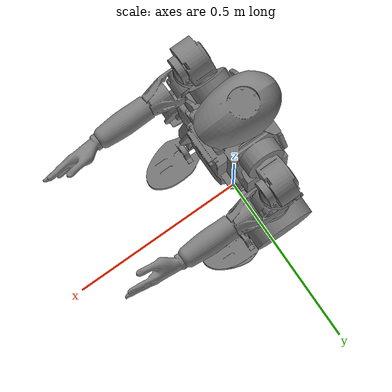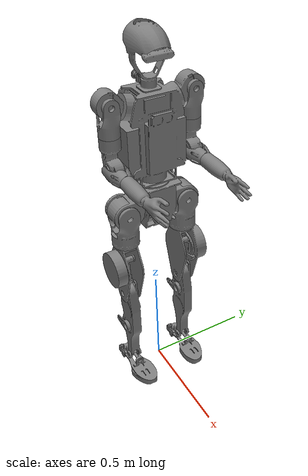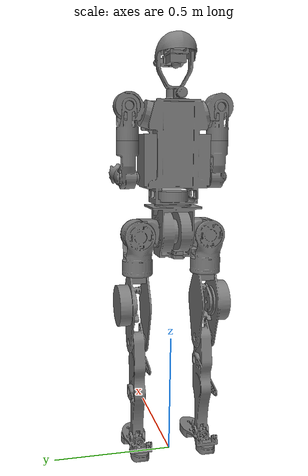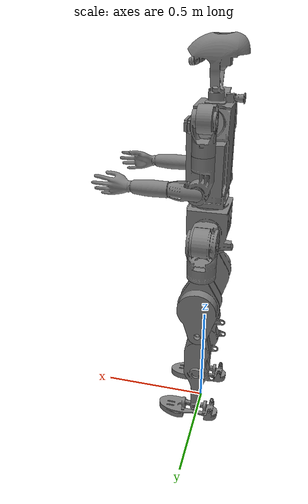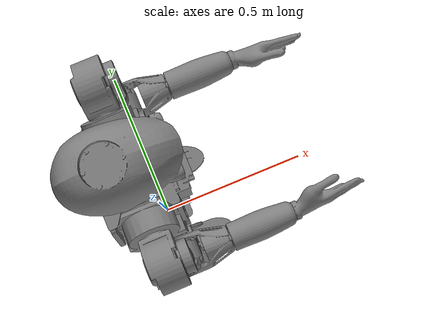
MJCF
<!--
Modified by Kaihong 2025
-->

<mujoco model="z1">
  <compiler angle="radian" meshdir="meshes/" autolimits="true"/>

  <default>
    <default class="z1">
      <default class="visual">
        <geom group="2" type="mesh" density="0" contype="0" conaffinity="0"/>
      </default>
      <default class="collision">
        <geom group="3" rgba=".2 .6 .2 .3" type="capsule" contype="1" conaffinity="1"/>
        <default class="foot_capsule">
          <geom type="capsule" size="0.01"/>
        </default>
      </default>
      <site group="5" rgba="1 0 0 1"/>
    </default>
  </default>

  <asset>
    <material name="silver" rgba="0.7 0.7 0.7 1"/>
    <material name="black" rgba="0.2 0.2 0.2 1"/>

    <mesh file="base_link.STL" name="base_link" />
    <mesh file="left_hip_pitch_link.STL" name="left_hip_pitch_link" />
    <mesh file="left_hip_roll_link.STL" name="left_hip_roll_link" />
    <mesh file="left_hip_yaw_link.STL" name="left_hip_yaw_link" />
    <mesh file="left_knee_link.STL" name="left_knee_link" />
    <mesh file="left_ankle_pitch_link.STL" name="left_ankle_pitch_link" />
    <mesh file="left_ankle_roll_link.STL" name="left_ankle_roll_link" />
    <mesh file="right_hip_pitch_link.STL" name="right_hip_pitch_link" />
    <mesh file="right_hip_roll_link.STL" name="right_hip_roll_link" />
    <mesh file="right_hip_yaw_link.STL" name="right_hip_yaw_link" />
    <mesh file="right_knee_link.STL" name="right_knee_link" />
    <mesh file="right_ankle_pitch_link.STL" name="right_ankle_pitch_link" />
    <mesh file="right_ankle_roll_link.STL" name="right_ankle_roll_link" />
    <mesh file="waist_yaw_link.STL" name="waist_yaw_link" />
    <mesh file="neck_yaw_link.STL" name="neck_yaw_link" />
    <mesh file="left_shoulder_pitch_link.STL" name="left_shoulder_pitch_link" />
    <mesh file="left_shoulder_roll_link.STL" name="left_shoulder_roll_link" />
    <mesh file="left_shoulder_yaw_link.STL" name="left_shoulder_yaw_link" />
    <mesh file="left_elbow_link.STL" name="left_elbow_link" />
    <mesh file="left_wrist_roll_link.STL" name="left_wrist_roll_link" />
    <mesh file="right_shoulder_pitch_link.STL" name="right_shoulder_pitch_link" />
    <mesh file="right_shoulder_roll_link.STL" name="right_shoulder_roll_link" />
    <mesh file="right_shoulder_yaw_link.STL" name="right_shoulder_yaw_link" />
    <mesh file="right_elbow_link.STL" name="right_elbow_link" />
    <mesh file="right_wrist_roll_link.STL" name="right_wrist_roll_link" />

    <texture type="skybox" builtin="gradient" rgb1=".3 .5 .7" rgb2="0 0 0" width="32" height="512"/>
    <texture name="body" type="cube" builtin="flat" mark="cross" width="128" height="128" rgb1="0.8 0.6 0.4" rgb2="0.8 0.6 0.4" markrgb="1 1 1"/>
    <material name="body" texture="body" texuniform="true" rgba="0.8 0.6 .4 1"/>
    <texture name="grid" type="2d" builtin="checker" width="512" height="512" rgb1=".1 .2 .3" rgb2=".2 .3 .4"/>
    <material name="grid" texture="grid" texrepeat="1 1" texuniform="true" reflectance=".2"/>

  </asset>

  <worldbody>
    <body name="pelvis" pos="0 0 1.07" childclass="z1">
      <light pos="0 0 2" mode="trackcom"/>
      <camera name="tracking" pos="1.734 -1.135 .35" xyaxes="0.552 0.834 -0.000 -0.170 0.112 0.979" mode="trackcom"/>
      <inertial diaginertia="0.123824 0.12145 0.0326559" mass="8.541" pos="0.0012895 1.3273e-06 -0.095822" quat="0.707277 0.00129818 0.00128272 0.706934" />
      <freejoint name="floating_base_joint"/>
      <geom class="visual" mesh="base_link" />
      <geom name="pelvis_collision" class="collision" type="sphere" pos="0.00249999 -6.63567e-09 -0.0931" quat="0.5 -0.5 0.5 -0.5" size="0.106754"/>
      <site name="imu_in_pelvis" size="0.01" pos="0.02 0 -0.08"/>

      <body name="left_hip_pitch_link" pos="0 0.0651 -0.1095">
        <inertial diaginertia="0.00573401 0.00520665 0.00407464" mass="1.747" pos="0.0018097 0.030881 -0.0012862" quat="0.778405 0.599981 -0.146093 -0.112985" />
        <joint name="left_hip_pitch_joint" axis="0 -1 0" range="-2.1 2.1" actuatorfrcrange="-320 320"/>
        <geom class="visual" mesh="left_hip_pitch_link" />

        <body name="left_hip_roll_link" pos="0.05475 0.07965 -0.012">
          <inertial diaginertia="0.0485163 0.0425282 0.0153232" mass="4.857" pos="-0.05038 0.00061214 -0.047868" quat="0.695493 0.184882 0.18935 0.668023" />
          <joint name="left_hip_roll_joint"  axis="1 0 0" range="-0.58 0.58"  actuatorfrcrange="-330 330"/>
          <geom class="visual" mesh="left_hip_roll_link" />
          <geom name="left_hip_collision" class="collision" type="capsule" pos="-0.05175 0.000113057 -0.0508075" quat="1 0 0 0" size="0.0807834 0.031084"/>

          <body name="left_hip_yaw_link" pos="-0.05175 0 -0.085">
            <inertial diaginertia="0.345339 0.344815 0.0204744" mass="6.616" pos="0.00094951 0.032152 -0.21095" quat="0.773498 0.0511596 -0.0444189 0.630167" />
            <joint name="left_hip_yaw_joint" axis="0 0 1" range="-0.58 0.58"  actuatorfrcrange="-150 150"/>
            <geom class="visual" mesh="left_hip_yaw_link" />
            <geom class="collision" name="left_thigh_collision" type="capsule" pos="-1.16927e-08 0.00362683 -0.233939" quat="7.54979e-08 -0 -0 -1" size="0.0948442 0.0580661"/>

            <body name="left_knee_link" pos="0 0.0055 -0.36388">
              <inertial diaginertia="0.219356 0.216321 0.00544017" mass="5.086" pos="0.00043005 -0.0055 -0.17568" quat="0.708958 -0.00750724 0.00810623 0.705164" />
              <joint axis="0 1 0" name="left_knee_joint" range="0 2.1"  actuatorfrcrange="-400 400"/>
              <geom class="visual" mesh="left_knee_link" />
              <geom name="left_shin_collision" class="collision" type="capsule" pos="-0.00339633 0.0055 -0.217975" quat="1 0 0 0" size="0.0630591 0.101894"/>

              <body name="left_ankle_pitch_link" pos="0 0.02025 -0.43">
                <inertial diaginertia="0.00032036 0.000183384 0.000143446" mass="0.216753" pos="0.003483 -0.02575 1.9264e-10" quat="0.307797 0.636601 -0.307797 0.636601" />
                <joint name="left_ankle_pitch_joint" axis="0 -1 0" range="-0.785 0.785"  actuatorfrcrange="-90 90"/>
                <geom class="visual" mesh="left_ankle_pitch_link" />

                <body name="left_ankle_roll_link" pos="0.05825 -0.02575 0">
                  <site name="left_foot" type="box" pos="-0.0202531 -0.00218003 -0.022" quat="0.5 -0.5 0.5 -0.5" size="0.055274 0.042 0.147997"/>
                  <inertial diaginertia="0.0110231 0.00950979 0.00300129" mass="1.083" pos="-0.010156 -0.0034812 -0.043019" quat="0.540217 0.477876 0.517409 0.460531" />
                  <joint name="left_ankle_roll_joint" axis="1 0 0" range="-0.17 0.17"  actuatorfrcrange="-90 90"/>
                  <geom class="visual" mesh="left_ankle_roll_link"/>

                  <geom class="collision" name="left_foot1_collision" type="box" pos="-0.0202531 -0.00218003 -0.022" quat="0.5 -0.5 0.5 -0.5" size="0.055274 0.042 0.147997"/>
                </body>
              </body>
            </body>
          </body>
        </body>
      </body>

      <body name="right_hip_pitch_link" pos="0 -0.0651 -0.1095">
        <inertial diaginertia="0.00573401 0.00520665 0.00407464" mass="1.747" pos="0.0018098 -0.030881 -0.001286" quat="0.599981 0.778405 0.112985 0.146093" />
        <joint name="right_hip_pitch_joint" axis="0 -1 0" range="-2.1 2.1"  actuatorfrcrange="-320 320"/>
        <geom class="visual" mesh="right_hip_pitch_link" />

        <body name="right_hip_roll_link" pos="0.05475 -0.07965 -0.012">
          <inertial diaginertia="0.0485163 0.0425282 0.0153232" mass="4.857" pos="-0.05038 -0.00061215 -0.047867" quat="0.668023 0.18935 0.184882 0.695493" />
          <joint name="right_hip_roll_joint" axis="1 0 0" range="-0.58 0.58"  actuatorfrcrange="-330 330"/>
          <geom class="visual" mesh="right_hip_roll_link"  />
          <geom name="right_hip_collision" class="collision" type="capsule" pos="-0.05175 -0.000113057 -0.0508075" quat="1 0 0 0" size="0.0807834 0.031084"/>

          <body name="right_hip_yaw_link" pos="-0.05175 0 -0.085">
            <inertial diaginertia="0.345339 0.344815 0.0204744" mass="6.616" pos="0.0009495 -0.032152 -0.21095" quat="0.630167 -0.0444189 0.0511596 0.773498" />
            <joint name="right_hip_yaw_joint" axis="0 0 1" range="-0.58 0.58"  actuatorfrcrange="-150 150"/>
            <geom class="visual" mesh="right_hip_yaw_link"  />
            <geom class="collision" name="right_thigh_collision" type="capsule" pos="-1.16927e-08 -0.00362683 -0.233939" quat="7.54979e-08 0 0 1" size="0.0948442 0.0580661"/>

            <body name="right_knee_link" pos="0 -0.0055 -0.36388">
              <inertial diaginertia="0.219356 0.216321 0.00544017" mass="5.086" pos="0.00043002 0.0055 -0.17568" quat="0.705164 0.00810623 -0.00750724 0.708958" />
              <joint name="right_knee_joint" axis="0 1 0" range="0 2.1"  actuatorfrcrange="-400 400"/>
              <geom class="visual" mesh="right_knee_link"  />
              <geom name="right_shin_collision" class="collision" type="capsule" pos="-0.00339633 0.0055 -0.217975" quat="1 0 0 0" size="0.0630591 0.101894"/>

              <body name="right_ankle_pitch_link" pos="0 -0.02025 -0.43">
                <inertial diaginertia="0.00032036 0.000183384 0.000143446" mass="0.216753" pos="0.003483 0.02575 -3.2206e-10" quat="0.636601 0.307797 -0.636601 0.307797" />
                <joint axis="0 -1 0" name="right_ankle_pitch_joint" range="-0.785 0.785"  actuatorfrcrange="-90 90"/>
                <geom class="visual" mesh="right_ankle_pitch_link"  />

                <body name="right_ankle_roll_link" pos="0.05825 0.02575 0">
                  <site name="right_foot" class="collision"  type="box" pos="-0.0202531 0.00218003 -0.022" quat="0.5 0.5 0.5 0.5" size="0.055274 0.042 0.147997"/>
                  <inertial diaginertia="0.0110231 0.00950979 0.00300129" mass="1.083" pos="-0.010158 0.0034812 -0.043018" quat="0.460531 0.517409 0.477876 0.540217" />
                  <joint name="right_ankle_roll_joint" axis="1 0 0" range="-0.17 0.17"  actuatorfrcrange="-90 90"/>
                  <geom class="visual" mesh="right_ankle_roll_link" />

                  <geom class="collision" name="right_foot1_collision" type="box" pos="-0.0202531 0.00218003 -0.022" quat="0.5 0.5 0.5 0.5" size="0.055274 0.042 0.147997"/>

                </body>
              </body>
            </body>
          </body>
        </body>
      </body>

      <body name="torso_link" pos="0 0 0.012">
        <inertial diaginertia="0.942736 0.887338 0.107687" mass="23" pos="0.000225884 -0.000120223 0.205639" quat="0.999999 0.000456772 0.00102516 0.00125556" />

        <geom class="visual" mesh="waist_yaw_link"  />
        <geom class="collision" name="torso_collision" type="capsule" pos="0.0013819 7.27596e-09 0.195283" quat="1 0 0 0" size="0.147447 0.0725262"/>

        <body name="head" pos="0 0 0.41425">
          <inertial diaginertia="0.0338879 0.0326467 0.00415341" mass="1.26765" pos="0.00157769 0.000186504 0.147434" quat="0.715417 -0.00223895 -0.00185019 0.698692" />
          <geom class="visual" mesh="neck_yaw_link"  />
          <geom class="collision" name="head_collision" type="sphere" pos="-0.0011753 -8.44919e-06 0.142127" quat="0.5 -0.5 0.5 -0.5" size="0.119878"/>
        </body>

        <body name="left_shoulder_pitch_link" pos="0 0.13046 0.34772" quat="0.991445 0.130526 0 0">
          <inertial diaginertia="0.00484086 0.0043841 0.0010421" mass="1.06948" pos="0.00207282 0.0535586 0.00802711" quat="0.646193 0.762916 -0.0153408 -0.0125598" />
          <joint axis="0 1 0" name="left_shoulder_pitch_joint" range="-2.1 2.1"  actuatorfrcrange="-90 90"/>
          <geom class="visual" mesh="left_shoulder_pitch_link"/>

          <body name="left_shoulder_roll_link" pos="0.043875 0.059 0.01" quat="0.991445 -0.130526 0 0">
            <inertial diaginertia="0.00761396 0.00745819 0.00076099" mass="0.700828" pos="-0.031819 -2.3986e-07 -0.085355" quat="0.697111 0.118475 0.118475 0.697111" />
            <joint axis="1 0 0" name="left_shoulder_roll_joint" range="-2.1 2.1"  actuatorfrcrange="-90 90"/>
            <geom class="visual" mesh="left_shoulder_roll_link" />

            <body name="left_shoulder_yaw_link" pos="-0.035625 0 -0.131">
              <inertial diaginertia="0.0203411 0.0200515 0.00140995" mass="1.4203" pos="0.00572588 -0.00218617 -0.103405" quat="0.724134 -0.0349834 -0.0193287 0.6885" />
              <joint axis="0 0 1" name="left_shoulder_yaw_joint" range="-2.1 2.1"  actuatorfrcrange="-60 60"/>
              <geom class="visual" mesh="left_shoulder_yaw_link" />
              <geom class="collision" name="left_shoulder_yaw_collision" type="capsule" pos="0.00762066 -9.31323e-10 -0.0945" quat="0.998705 0 -0.0508753 0" size="0.0420796 0.0565597"/>

              <body name="left_elbow_link" pos="0.015334 -0.0095 -0.145">
                <inertial diaginertia="0.00294452 0.00276483 0.000375055" mass="0.463665" pos="0.0673841 0.007 0" quat="-0.0325077 0.706357 0.0325469 0.706359" />
                <joint axis="0 1 0" name="left_elbow_joint" range="-2.1 2.1"  actuatorfrcrange="-60 60"/>
                <geom class="visual" mesh="left_elbow_link" />
                <geom class="collision" name="left_elbow_link_collision" type="capsule" pos="0.045 0.00699999 -2.07001e-09" quat="0.5 -0.5 0.5 -0.5" size="0.0450001 0.036718"/>

                <body name="left_wrist_roll_link" pos="0.1145 0.007 0">
                  <inertial diaginertia="0.0120463 0.0119732 0.000258868" mass="0.402121" pos="0.149605 -0.00386461 0.000633098" quat="0.437829 0.567182 0.419302 0.557491" />
                  <joint axis="1 0 0" name="left_wrist_roll_joint" range="-2.1 2.1"  actuatorfrcrange="-36 36"/>
                  <geom class="visual" mesh="left_wrist_roll_link" />
                  <geom class="collision" name="left_wrist_roll_collision" type="capsule" pos="0.0772802 -6.67933e-09 -1.38425e-09" quat="0.5 -0.5 0.5 -0.5" size="0.0331453 0.0480939"/>

                  <site name="left_palm" type="capsule" pos="0.238909 -0.00815913 0.000971968" quat="0.5 -0.5 0.5 -0.5" size="0.042871 0.0350558"/>
                  <geom class="collision" name="left_hand_collision" type="capsule" pos="0.238909 -0.00815913 0.000971968" quat="0.5 -0.5 0.5 -0.5" size="0.042871 0.0350558"/>
                </body>
              </body>
            </body>
          </body>
        </body>

        <body name="right_shoulder_pitch_link" pos="0 -0.130463 0.347715" quat="0.991445 -0.130526 0 0">
          <inertial diaginertia="0.00484086 0.0043841 0.0010421" mass="1.06948" pos="0.0020729 -0.053559 0.0080272" quat="0.762916 0.646193 0.0125598 0.0153408" />
          <joint axis="0 1 0" name="right_shoulder_pitch_joint" range="-2.1 2.1"  actuatorfrcrange="-90 90"/>
          <geom class="visual" mesh="right_shoulder_pitch_link" />

          <body name="right_shoulder_roll_link" pos="0.043875 -0.059 0.01" quat="0.991445 0.130526 0 0">
            <inertial diaginertia="0.00761396 0.00745819 0.00076099" mass="0.700828" pos="-0.0318196 -1.01282e-07 -0.0853558" quat="0.697111 0.118475 0.118475 0.697111" />
            <joint axis="-1 0 0" name="right_shoulder_roll_joint" range="-2.1 2.1"  actuatorfrcrange="-90 90"/>
            <geom class="visual" mesh="right_shoulder_roll_link" />

            <body name="right_shoulder_yaw_link" pos="-0.035625 0 -0.131">
              <inertial diaginertia="0.0203411 0.0200515 0.00140995" mass="1.4203" pos="0.00572659 0.00218701 -0.103405" quat="0.6885 -0.0193287 -0.0349834 0.724134" />
              <joint axis="0 0 -1" name="right_shoulder_yaw_joint" range="-2.1 2.1"  actuatorfrcrange="-60 60"/>
              <geom class="visual" mesh="right_shoulder_yaw_link" />
              <geom class="collision" name="right_shoulder_yaw_collision" type="capsule" pos="0.00762066 9.31323e-10 -0.0945" quat="0.998705 0 -0.0508753 0" size="0.0420796 0.0565597"/>

              <body name="right_elbow_link" pos="0.015334 0.0095 -0.145">
                <inertial diaginertia="0.00294452 0.00276483 0.000375055" mass="0.463665" pos="0.0673848 -0.007 0" quat="0.0325077 0.706357 -0.0325469 0.706359" />
                <joint axis="0 1 0" name="right_elbow_joint" range="-2.1 2.1"  actuatorfrcrange="-60 60"/>
                <geom class="visual" mesh="right_elbow_link" />
                <geom class="collision" name="right_elbow_link_collision" type="capsule" pos="0.045 -0.00699999 -2.07001e-09" quat="0.5 0.5 0.5 0.5" size="0.0450001 0.036718"/>

                <body name="right_wrist_roll_link" pos="0.1145 -0.007 0">

                  <inertial diaginertia="0.0120463 0.0119732 0.000258868" mass="0.402121" pos="0.1496 0.0038635 0.00063523" quat="0.557491 0.419302 0.567182 0.437829" />
                  <joint axis="-1 0 0" name="right_wrist_roll_joint" range="-2.1 2.1"  actuatorfrcrange="-36 36"/>
                  <geom class="visual" mesh="right_wrist_roll_link" />
                  <geom class="collision" name="right_wrist_roll_collision" type="capsule" pos="0.0772802 6.67933e-09 -1.38425e-09" quat="0.5 0.5 0.5 0.5" size="0.0331453 0.0480939"/>

                  <site name="right_palm" type="capsule" pos="0.238909 0.00815913 0.000971968" quat="0.5 0.5 0.5 0.5" size="0.042871 0.0350558"/>
                  <geom class="collision" name="right_hand_collision" type="capsule" pos="0.238909 0.00815913 0.000971968" quat="0.5 0.5 0.5 0.5" size="0.042871 0.0350558"/>

                </body>
              </body>
            </body>
          </body>
        </body>
      </body>
    </body>
  </worldbody>

  <contact>
    <exclude body1="pelvis" body2="right_hip_roll_link"/>
    <exclude body1="pelvis" body2="left_hip_roll_link"/>
    <exclude body1="left_hip_yaw_link" body2="left_knee_link"/>
    <exclude body1="right_hip_yaw_link" body2="right_knee_link"/>
  </contact>
</mujoco>
